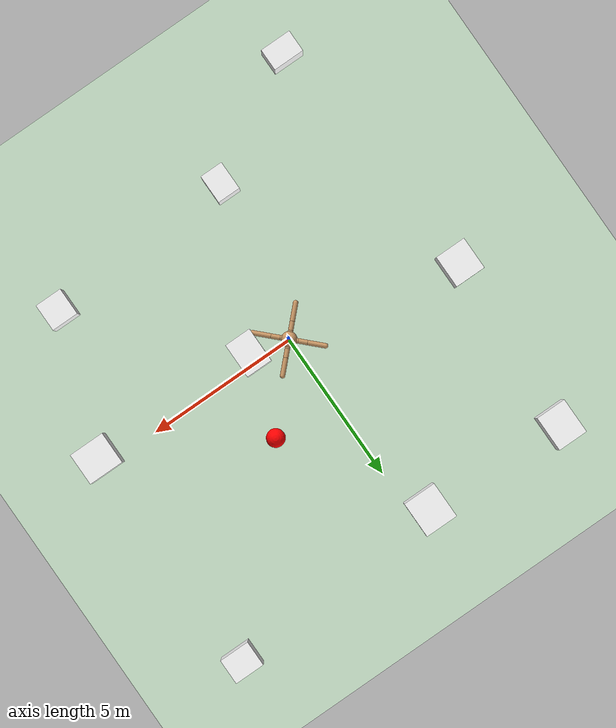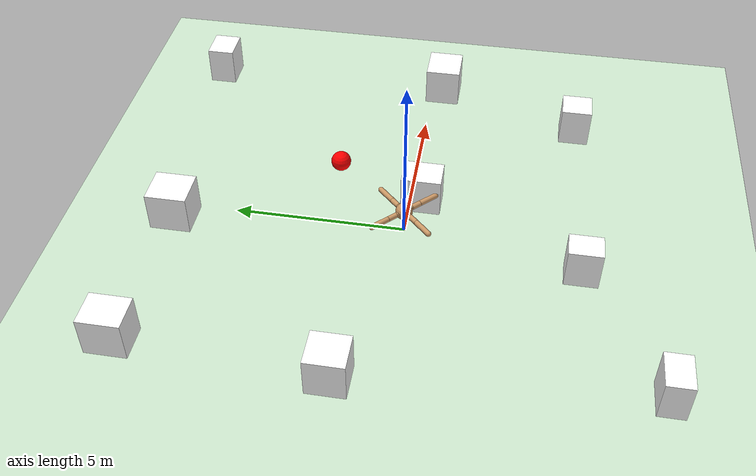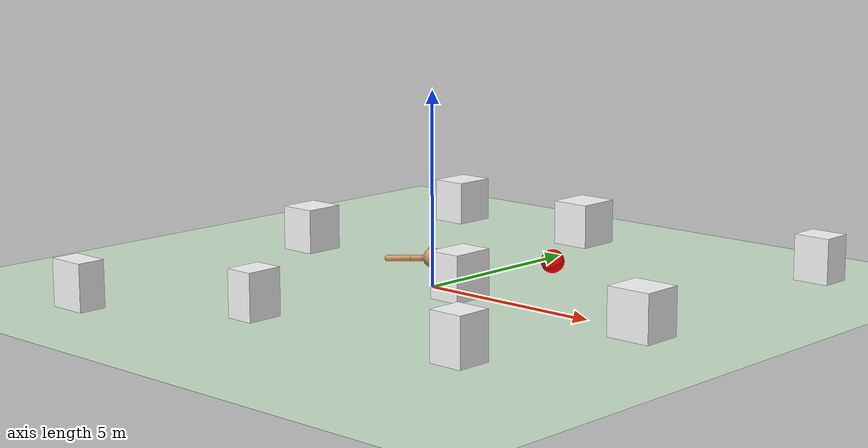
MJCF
<mujoco model="ant">
  <compiler angle="radian" coordinate="local" inertiafromgeom="true"/>
  <option integrator="RK4" timestep="0.01"/>
    <size nconmax="500"/>
  <custom>
    <numeric data="0.0 0.0 0.55 1.0 0.0 0.0 0.0 0.0 1.0 0.0 -1.0 0.0 -1.0 0.0 1.0" name="init_qpos"/>
  </custom>
  <default>
    <joint armature="1" damping="1" limited="true"/>
    <geom conaffinity="0" condim="3" density="5.0" friction="1 0.5 0.5" margin="0.01" rgba="0.8 0.6 0.4 1"/>
  </default>
  <asset>
    <texture builtin="gradient" height="100" rgb1="1 1 1" rgb2="0 0 0" type="skybox" width="100"/>
    <texture builtin="flat" height="1278" mark="cross" markrgb="1 1 1" name="texgeom" random="0.01" rgb1="0.8 0.6 0.4" rgb2="0.8 0.6 0.4" type="cube" width="127"/>
    <texture builtin="checker" height="100" name="texplane" rgb1="0 0 0" rgb2="0.8 0.8 0.8" type="2d" width="100"/>
    <material name="MatPlane" reflectance="0.2" shininess="1" specular="1" texrepeat="0 0" texture="texplane"/>
    <material name="geom" texture="texgeom" texuniform="true"/>
  </asset>

  <worldbody>
    <light cutoff="100" diffuse="1 1 1" dir="-0 0 -1.3" directional="true" exponent="1" pos="0 0 1.3" specular=".1 .1 .1"/>
    <geom conaffinity="1" condim="3" material="MatPlane" name="floor" pos="0 0 0" rgba="0.8 0.9 0.8 1" size="10 10 1" type="plane"/>

    <body name="torso" pos="0 0 0.75">
      <camera name="track" mode="trackcom" pos="0 -3 0.3" xyaxes="1 0 0 0 0 1"/>
      <geom name="torso_geom" pos="0 0 0" size="0.25" mass="0.1" type="sphere"/>
      <joint armature="0" damping="0" limited="false" margin="0.01" name="root" pos="0 0 0" type="free"/>

      <body name="front_left_leg" pos="0 0 0">
        <geom fromto="0.0 0.0 0.0 0.2 0.2 0.0" name="aux_1_geom" size="0.08" type="capsule"/>
        <body name="aux_1" pos="0.2 0.2 0">
          <joint axis="0 0 1" name="hip_1" pos="0.0 0.0 0.0" range="-0.7 0.7" type="hinge"/>
          <geom fromto="0.0 0.0 0.0 0.2 0.2 0.0" name="left_leg_geom" size="0.08" type="capsule"/>
          <body pos="0.2 0.2 0">
            <joint axis="-1 1 0" name="ankle_1" pos="0.0 0.0 0.0" range="0.8 1.4" type="hinge"/>
            <geom fromto="0.0 0.0 0.0 0.4 0.4 0.0" name="left_ankle_geom" size="0.08" type="capsule"/>
          </body>
        </body>
      </body>

      <body name="front_right_leg" pos="0 0 0">
        <geom fromto="0.0 0.0 0.0 -0.2 0.2 0.0" name="aux_2_geom" size="0.08" type="capsule"/>
        <body name="aux_2" pos="-0.2 0.2 0">
          <joint axis="0 0 1" name="hip_2" pos="0.0 0.0 0.0" range="-0.7 0.7" type="hinge"/>
          <geom fromto="0.0 0.0 0.0 -0.2 0.2 0.0" name="right_leg_geom" size="0.08" type="capsule"/>
          <body pos="-0.2 0.2 0">
            <joint axis="1 1 0" name="ankle_2" pos="0.0 0.0 0.0" range="-1.4 -0.8" type="hinge"/>
            <geom fromto="0.0 0.0 0.0 -0.4 0.4 0.0" name="right_ankle_geom" size="0.08" type="capsule"/>
          </body>
        </body>
      </body>

      <body name="back_leg" pos="0 0 0">
        <geom fromto="0.0 0.0 0.0 -0.2 -0.2 0.0" name="aux_3_geom" size="0.08" type="capsule"/>
        <body name="aux_3" pos="-0.2 -0.2 0">
          <joint axis="0 0 1" name="hip_3" pos="0.0 0.0 0.0" range="-0.7 0.7" type="hinge"/>
          <geom fromto="0.0 0.0 0.0 -0.2 -0.2 0.0" name="back_leg_geom" size="0.08" type="capsule"/>
          <body pos="-0.2 -0.2 0">
            <joint axis="-1 1 0" name="ankle_3" pos="0.0 0.0 0.0" range="-1.4 -0.8" type="hinge"/>
            <geom fromto="0.0 0.0 0.0 -0.4 -0.4 0.0" name="third_ankle_geom" size="0.08" type="capsule"/>
          </body>
        </body>
      </body>

      <body name="right_back_leg" pos="0 0 0">
        <geom fromto="0.0 0.0 0.0 0.2 -0.2 0.0" name="aux_4_geom" size="0.08" type="capsule"/>
        <body name="aux_4" pos="0.2 -0.2 0">
          <joint axis="0 0 1" name="hip_4" pos="0.0 0.0 0.0" range="-0.7 0.7" type="hinge"/>
          <geom fromto="0.0 0.0 0.0 0.2 -0.2 0.0" name="rightback_leg_geom" size="0.08" type="capsule"/>
          <body pos="0.2 -0.2 0">
            <joint axis="1 1 0" name="ankle_4" pos="0.0 0.0 0.0" range="0.8 1.4" type="hinge"/>
            <geom fromto="0.0 0.0 0.0 0.4 -0.4 0.0" name="fourth_ankle_geom" size="0.08" type="capsule"/>
          </body>
        </body>
      </body>

      <body name="left_feeler" pos="0 0 0">
        <joint axis="0 0 1" name="lf1" pos="0.0 0.0 0.0" range="0.08 0.3" type="hinge"/>
        <geom fromto="0.2 0.0 0.0 0.6 0.0 0.0" name="lf1_geom" size="0.01" density="1" type="capsule" rgba="0 1 1 1"/>
        <body pos="0.6 0.0 0">
          <joint axis="0 1 0" name="lf2" pos="0.0 0.0 0.0" range="-0.65 0.3" type="hinge"/>
          <geom fromto="0.0 0.0 0.0 0.6 0.0 0.0" name="lf2_geom" size="0.01" density="1" type="capsule" rgba="0 1 1 1"/>
        </body>
      </body>

      <body name="right_feeler" pos="0 0 0">
        <joint axis="0 0 1" name="rf1" pos="0.0 0.0 0.0" range="-0.3 -0.08" type="hinge"/>
        <geom fromto="0.2 0.0 0.0 0.6 0.0 0.0" name="rf1_geom" size="0.01" density="1" type="capsule" rgba="0 1 1 1"/>
        <body pos="0.6 0.0 0">
          <joint axis="0 1 0" name="rf2" pos="0.0 0.0 0.0" range="-0.65 0.3" type="hinge"/>
          <geom fromto="0.0 0.0 0.0 0.6 0.0 0.0" name="rf2_geom" size="0.01" density="1" type="capsule" rgba="0 1 1 1"/>
        </body>
      </body>

    </body>

<!-- DEFINE CUBES AND GOAL HERE -->
    <body>
        <geom conaffinity='1' condim='3' name='cube0_geom' pos='-4.832253695942503 -7.314656356819413 0.6' size='0.519537037293966 0.3653354570198303 0.6' rgba='1 1 1 1' mass='70' type='box'/>
     </body>
    <body>
        <geom conaffinity='1' condim='3' name='cube1_geom' pos='-5.587354518068869 1.0631784831678126 0.6' size='0.5130576222052854 0.5447233683413045 0.6' rgba='1 1 1 1' mass='70' type='box'/>
     </body>
    <body>
        <geom conaffinity='1' condim='3' name='cube2_geom' pos='-5.294077151912472 6.860204869221224 0.6' size='0.500025428646683 0.5918900894892288 0.6' rgba='1 1 1 1' mass='70' type='box'/>
     </body>
    <body>
        <geom conaffinity='1' condim='3' name='cube3_geom' pos='-0.9963923256200347 -5.09450505068112 0.6' size='0.38339900067761357 0.478820803253896 0.6' rgba='1 1 1 1' mass='70' type='box'/>
     </body>
    <body>
        <geom conaffinity='1' condim='3' name='cube4_geom' pos='1.2522466081328223 -0.3565860141569017 0.6' size='0.44179566871398873 0.5833678233553521 0.6' rgba='1 1 1 1' mass='70' type='box'/>
     </body>
    <body>
        <geom conaffinity='1' condim='3' name='cube5_geom' pos='-0.5573234948920368 6.702528980096819 0.6' size='0.5484202470724853 0.601561464257619 0.6' rgba='1 1 1 1' mass='70' type='box'/>
     </body>
    <body>
        <geom conaffinity='1' condim='3' name='cube6_geom' pos='5.272592313392343 -4.753497045800229 0.6' size='0.44811583335062777 0.4546346220749087 0.6' rgba='1 1 1 1' mass='70' type='box'/>
     </body>
    <body>
        <geom conaffinity='1' condim='3' name='cube7_geom' pos='6.86391062019079 -0.3578975847227439 0.6' size='0.5874099566483487 0.5359149332002706 0.6' rgba='1 1 1 1' mass='70' type='box'/>
     </body>
    <body>
        <geom conaffinity='1' condim='3' name='cube8_geom' pos='6.768821825877362 7.231421638883328 0.6' size='0.49960471139935286 0.4205868893300553 0.6' rgba='1 1 1 1' mass='70' type='box'/>
     </body>
    <body>
        <geom conaffinity='1' condim='3' name='goal_geom' pos='2.0533533367472883 2.2393105959646507 0.6' size='0.3' rgba='1 0 0 1' mass='1' type='sphere'/>
     </body>

  </worldbody>

  <actuator>
    <position joint="hip_4" kp="20"/>
    <position joint="ankle_4" kp="20"/>
    <position joint="hip_1" kp="20"/>
    <position joint="ankle_1" kp="20"/>
    <position joint="hip_2" kp="20"/>
    <position joint="ankle_2" kp="20"/>
    <position joint="hip_3" kp="20"/>
    <position joint="ankle_3" kp="20"/>
    <motor ctrllimited="true" ctrlrange="-1.0 1.0" joint="lf1" gear="20"/>
    <motor ctrllimited="true" ctrlrange="-1.0 1.0" joint="lf2" gear="20"/>
    <motor ctrllimited="true" ctrlrange="-1.0 1.0" joint="rf1" gear="20"/>
    <motor ctrllimited="true" ctrlrange="-1.0 1.0" joint="rf2" gear="20"/>
  </actuator>
</mujoco>
